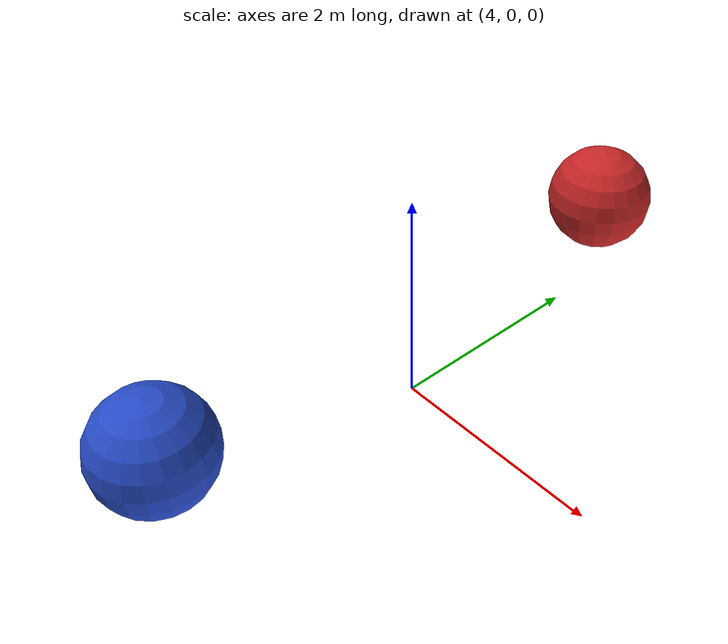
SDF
<?xml version="1.0"?>
<sdf version="1.6">
  <world name="simple_world">

    <plugin name="gazebo_ros_state" filename="libgazebo_ros_state.so">
          <ros>
            <namespace>/sim</namespace>
          </ros>
          <update_rate>20.0</update_rate>
    </plugin>

    <model name="invisible_collision_box1">
        <static>true</static>
            <link name="link">
                <collision name="collision">
                    <geometry>
                        <box>
                            <size>10 0.5 10</size>
                        </box>
                    </geometry>
                    <pose>5 -5 1 0 0 0</pose> <!-- Position and orientation of the collision box -->
                </collision>
            </link>
    </model>

    <model name="invisible_collision_box2">
        <static>true</static>
            <link name="link">
                <collision name="collision">
                    <geometry>
                        <box>
                            <size>10 10 0.5</size>
                        </box>
                    </geometry>
                    <pose>5 0 6 0 0 0</pose> <!-- Position and orientation of the collision box -->
                </collision>
            </link>
    </model>

    <model name="invisible_collision_box3">
        <static>true</static>
            <link name="link">
                <collision name="collision">
                    <geometry>
                        <box>
                            <size>10 0.5 10</size>
                        </box>
                    </geometry>
                    <pose>5 5 1 0 0 0</pose> <!-- Position and orientation of the collision box -->
                </collision>
            </link>
    </model>

    <model name="invisible_collision_box4">
        <static>true</static>
            <link name="link">
                <collision name="collision">
                    <geometry>
                        <box>
                            <size>10 10 0.5</size>
                        </box>
                    </geometry>
                    <pose>5 0 -4 0 0 0</pose> <!-- Position and orientation of the collision box -->
                </collision>
            </link>
    </model>

    <model name="red_sphere">
        <pose>4 2.5 1 0 0 0</pose>
        <link name="link">
            <gravity>false</gravity>
            <collision name="collision">
                <geometry><sphere><radius>0.5</radius></sphere></geometry>
            </collision>
            <visual name="visual">
                <geometry><sphere><radius>0.5</radius></sphere></geometry>
                <material>
                    <script>
                        <uri>file://media/materials/scripts/gazebo.material</uri>
                        <name>Gazebo/Red</name>
                    </script>
                </material>
            </visual>
        </link>
    </model>

    <model name="blue_sphere">
        <pose>4 -2.5 1 0 0 0</pose>
        <link name="link">
            <gravity>false</gravity>
            <collision name="collision">
                <geometry><sphere><radius>0.5</radius></sphere></geometry>
            </collision>
            <visual name="visual">
                <geometry><sphere><radius>0.5</radius></sphere></geometry>
                <material>
                    <script>
                        <uri>file://media/materials/scripts/gazebo.material</uri>
                        <name>Gazebo/Blue</name>
                    </script>
                </material>
            </visual>
        </link>
    </model>

    <model name="camera_model">
      <pose>0 0 1 0 0 0</pose>
      <link name="camera_link">
        <gravity>false</gravity>
        <sensor type="camera" name="camera1">
          <update_rate>20</update_rate>
          <visualize>true</visualize>
          <camera name="head">
            <horizontal_fov>1.3962634</horizontal_fov>
            <image>
              <width>32</width>
              <height>32</height>
              <format>R8G8B8</format>
            </image>
            <clip>
              <near>0.02</near>
              <far>3000</far>
            </clip>
          </camera>
          <plugin name="camera_controller" filename="libgazebo_ros_camera.so">
            <ros>
              <namespace>/cam</namespace>
            </ros>
          </plugin>
        </sensor>
      </link>
    </model>

    <scene>
      <!-- Set the background color of the scene -->
      <ambient>1.0 1.0 1.0 1.0</ambient>
      <!-- Set the sky color -->
      <background>0.8 0.8 0.8 1.0</background>
      <!-- Set the diffuse color of the ground plane  0.2 0.8 1.0 1.0 / 0.8 0.8 0.8 1.0-->
    </scene>

  </world>
</sdf>
